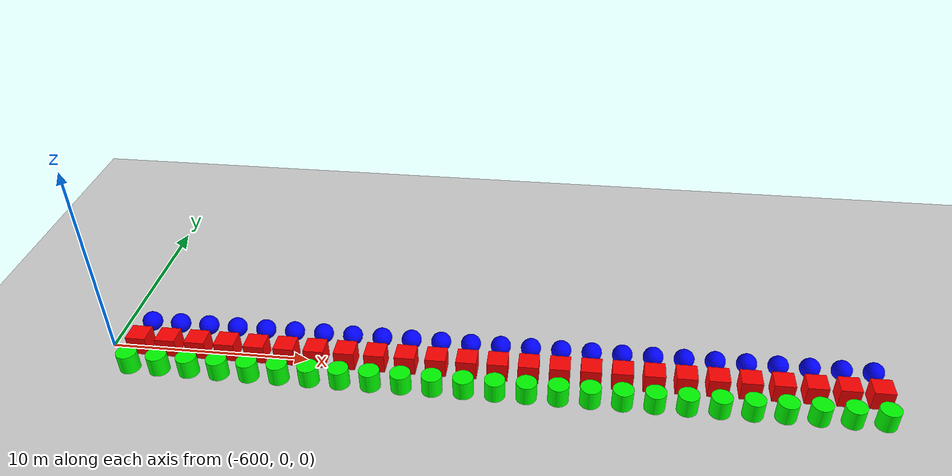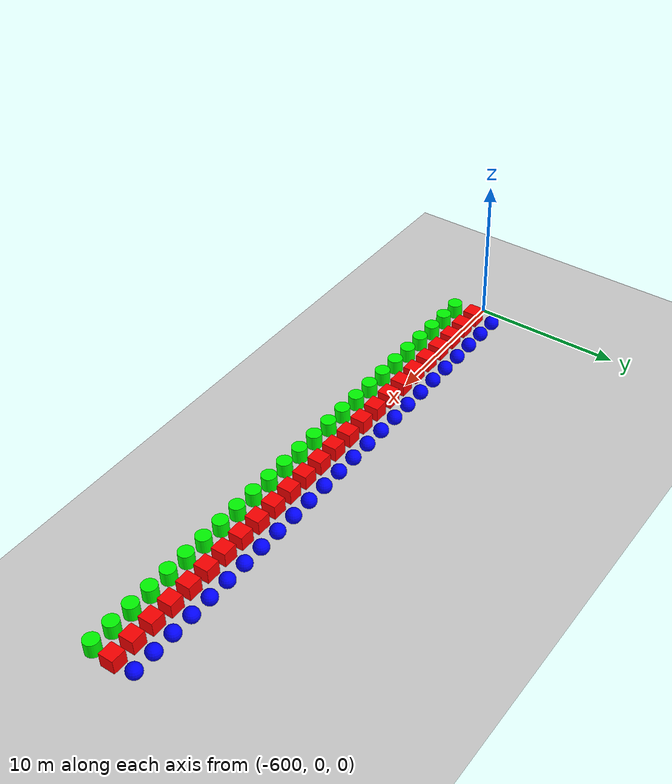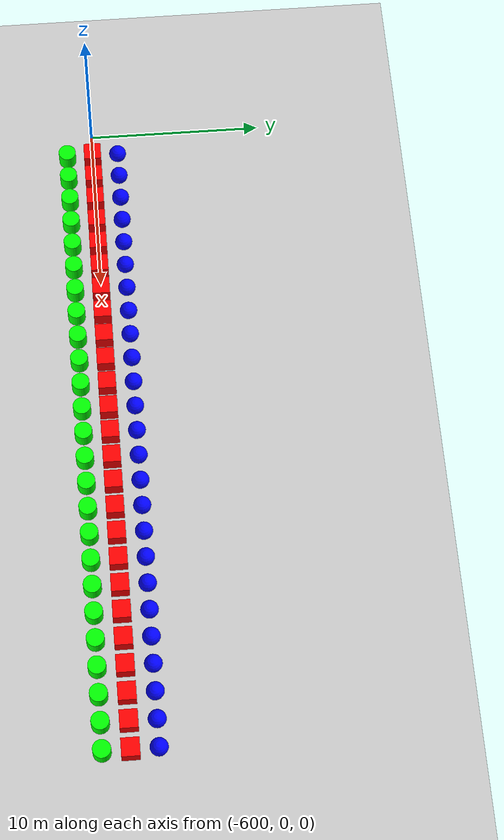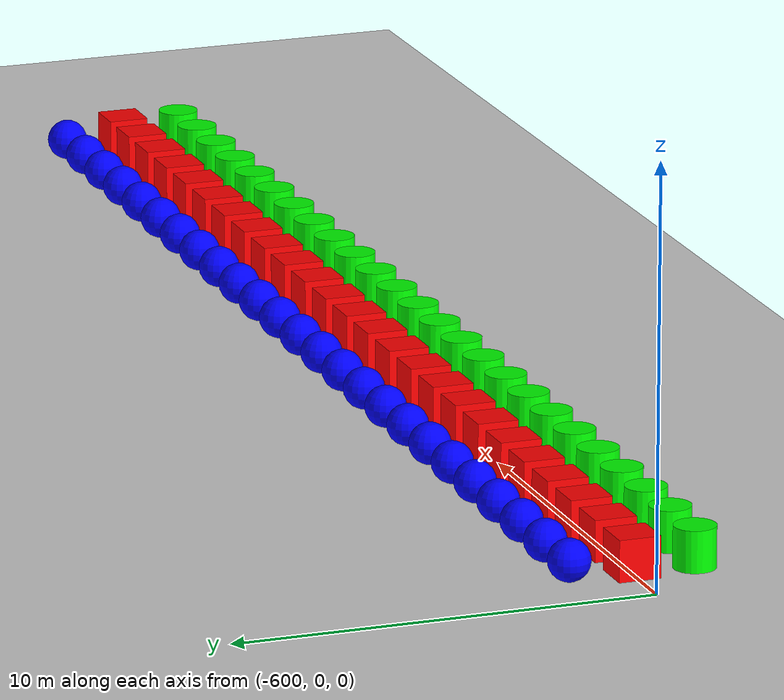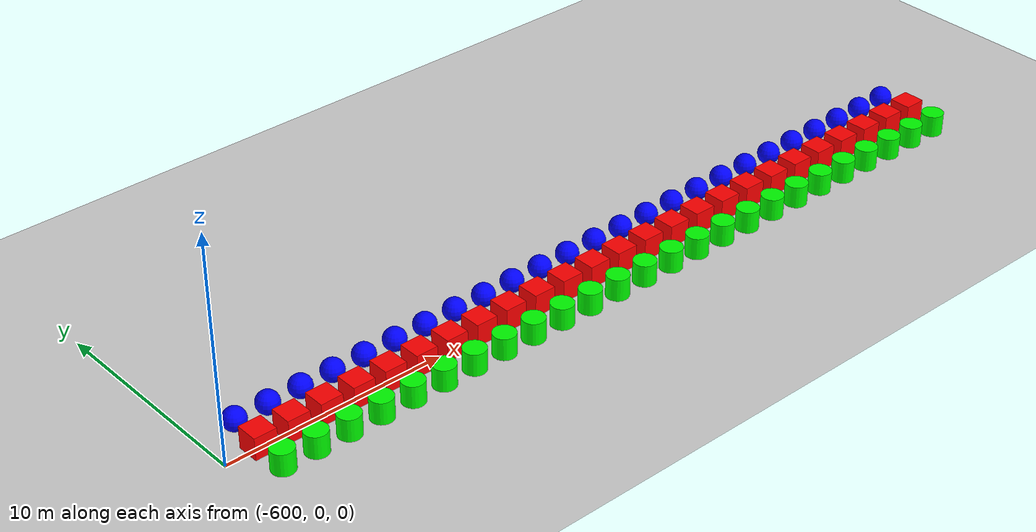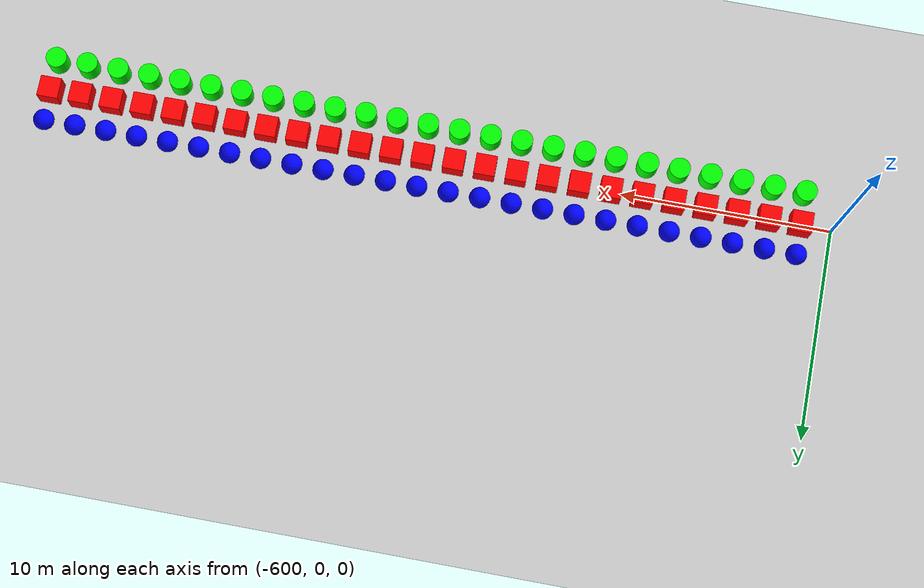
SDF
<sdf version="1.6">
 <world name="shapes">
  <model name="ground_plane">
   <static>true</static>
   <link name="link">
    <collision name="collision">
     <geometry><plane><normal>0 0 1</normal><size>100 100</size></plane></geometry>
    </collision>
    <visual name="visual">
     <geometry><plane><normal>0 0 1</normal><size>100 100</size></plane></geometry>
     <material>
      <ambient>0.8 0.8 0.8 1</ambient>
      <diffuse>0.8 0.8 0.8 1</diffuse>
      <specular>0.8 0.8 0.8 1</specular>
     </material>
    </visual>
   </link>
  </model>
  <model name="box_101">
   <pose>-598.5 0 0.5 0 0 0</pose>
   <link name="box_link">
    <inertial>
     <inertia><ixx>1</ixx><ixy>0</ixy><ixz>0</ixz><iyy>1</iyy><iyz>0</iyz><izz>1</izz></inertia>
     <mass>1.0</mass>
    </inertial>
    <collision name="box_collision"><geometry><box><size>1 1 1</size></box></geometry></collision>
    <visual name="box_visual">
     <geometry><box><size>1 1 1</size></box></geometry>
     <material><ambient>1 0 0 1</ambient><diffuse>1 0 0 1</diffuse><specular>1 0 0 1</specular></material>
    </visual>
   </link>
  </model>
  <model name="cylinder_101">
   <pose>-598.5 -1.5 0.5 0 0 0</pose>
   <link name="cylinder_link">
    <inertial>
     <inertia><ixx>2</ixx><ixy>0</ixy><ixz>0</ixz><iyy>2</iyy><iyz>0</iyz><izz>2</izz></inertia>
     <mass>2.0</mass>
    </inertial>
    <collision name="cylinder_collision">
     <geometry><cylinder><radius>0.5</radius><length>1.0</length></cylinder></geometry>
    </collision>
    <visual name="cylinder_visual">
     <geometry><cylinder><radius>0.5</radius><length>1.0</length></cylinder></geometry>
     <material><ambient>0 1 0 1</ambient><diffuse>0 1 0 1</diffuse><specular>0 1 0 1</specular></material>
    </visual>
   </link>
  </model>
  <model name="sphere_101">
   <pose>-598.5 1.5 0.5 0 0 0</pose>
   <link name="sphere_link">
    <inertial>
     <inertia><ixx>3</ixx><ixy>0</ixy><ixz>0</ixz><iyy>3</iyy><iyz>0</iyz><izz>3</izz></inertia>
     <mass>3.0</mass>
    </inertial>
    <collision name="sphere_collision"><geometry><sphere><radius>0.5</radius></sphere></geometry></collision>
    <visual name="sphere_visual">
     <geometry><sphere><radius>0.5</radius></sphere></geometry>
     <material><ambient>0 0 1 1</ambient><diffuse>0 0 1 1</diffuse><specular>0 0 1 1</specular></material>
    </visual>
   </link>
  </model>
  <model name="box_102">
   <pose>-597.0 0 0.5 0 0 0</pose>
   <link name="box_link">
    <inertial>
     <inertia><ixx>1</ixx><ixy>0</ixy><ixz>0</ixz><iyy>1</iyy><iyz>0</iyz><izz>1</izz></inertia>
     <mass>1.0</mass>
    </inertial>
    <collision name="box_collision"><geometry><box><size>1 1 1</size></box></geometry></collision>
    <visual name="box_visual">
     <geometry><box><size>1 1 1</size></box></geometry>
     <material><ambient>1 0 0 1</ambient><diffuse>1 0 0 1</diffuse><specular>1 0 0 1</specular></material>
    </visual>
   </link>
  </model>
  <model name="cylinder_102">
   <pose>-597.0 -1.5 0.5 0 0 0</pose>
   <link name="cylinder_link">
    <inertial>
     <inertia><ixx>2</ixx><ixy>0</ixy><ixz>0</ixz><iyy>2</iyy><iyz>0</iyz><izz>2</izz></inertia>
     <mass>2.0</mass>
    </inertial>
    <collision name="cylinder_collision">
     <geometry><cylinder><radius>0.5</radius><length>1.0</length></cylinder></geometry>
    </collision>
    <visual name="cylinder_visual">
     <geometry><cylinder><radius>0.5</radius><length>1.0</length></cylinder></geometry>
     <material><ambient>0 1 0 1</ambient><diffuse>0 1 0 1</diffuse><specular>0 1 0 1</specular></material>
    </visual>
   </link>
  </model>
  <model name="sphere_102">
   <pose>-597.0 1.5 0.5 0 0 0</pose>
   <link name="sphere_link">
    <inertial>
     <inertia><ixx>3</ixx><ixy>0</ixy><ixz>0</ixz><iyy>3</iyy><iyz>0</iyz><izz>3</izz></inertia>
     <mass>3.0</mass>
    </inertial>
    <collision name="sphere_collision"><geometry><sphere><radius>0.5</radius></sphere></geometry></collision>
    <visual name="sphere_visual">
     <geometry><sphere><radius>0.5</radius></sphere></geometry>
     <material><ambient>0 0 1 1</ambient><diffuse>0 0 1 1</diffuse><specular>0 0 1 1</specular></material>
    </visual>
   </link>
  </model>
  <model name="box_103">
   <pose>-595.5 0 0.5 0 0 0</pose>
   <link name="box_link">
    <inertial>
     <inertia><ixx>1</ixx><ixy>0</ixy><ixz>0</ixz><iyy>1</iyy><iyz>0</iyz><izz>1</izz></inertia>
     <mass>1.0</mass>
    </inertial>
    <collision name="box_collision"><geometry><box><size>1 1 1</size></box></geometry></collision>
    <visual name="box_visual">
     <geometry><box><size>1 1 1</size></box></geometry>
     <material><ambient>1 0 0 1</ambient><diffuse>1 0 0 1</diffuse><specular>1 0 0 1</specular></material>
    </visual>
   </link>
  </model>
  <model name="cylinder_103">
   <pose>-595.5 -1.5 0.5 0 0 0</pose>
   <link name="cylinder_link">
    <inertial>
     <inertia><ixx>2</ixx><ixy>0</ixy><ixz>0</ixz><iyy>2</iyy><iyz>0</iyz><izz>2</izz></inertia>
     <mass>2.0</mass>
    </inertial>
    <collision name="cylinder_collision">
     <geometry><cylinder><radius>0.5</radius><length>1.0</length></cylinder></geometry>
    </collision>
    <visual name="cylinder_visual">
     <geometry><cylinder><radius>0.5</radius><length>1.0</length></cylinder></geometry>
     <material><ambient>0 1 0 1</ambient><diffuse>0 1 0 1</diffuse><specular>0 1 0 1</specular></material>
    </visual>
   </link>
  </model>
  <model name="sphere_103">
   <pose>-595.5 1.5 0.5 0 0 0</pose>
   <link name="sphere_link">
    <inertial>
     <inertia><ixx>3</ixx><ixy>0</ixy><ixz>0</ixz><iyy>3</iyy><iyz>0</iyz><izz>3</izz></inertia>
     <mass>3.0</mass>
    </inertial>
    <collision name="sphere_collision"><geometry><sphere><radius>0.5</radius></sphere></geometry></collision>
    <visual name="sphere_visual">
     <geometry><sphere><radius>0.5</radius></sphere></geometry>
     <material><ambient>0 0 1 1</ambient><diffuse>0 0 1 1</diffuse><specular>0 0 1 1</specular></material>
    </visual>
   </link>
  </model>
  <model name="box_104">
   <pose>-594.0 0 0.5 0 0 0</pose>
   <link name="box_link">
    <inertial>
     <inertia><ixx>1</ixx><ixy>0</ixy><ixz>0</ixz><iyy>1</iyy><iyz>0</iyz><izz>1</izz></inertia>
     <mass>1.0</mass>
    </inertial>
    <collision name="box_collision"><geometry><box><size>1 1 1</size></box></geometry></collision>
    <visual name="box_visual">
     <geometry><box><size>1 1 1</size></box></geometry>
     <material><ambient>1 0 0 1</ambient><diffuse>1 0 0 1</diffuse><specular>1 0 0 1</specular></material>
    </visual>
   </link>
  </model>
  <model name="cylinder_104">
   <pose>-594.0 -1.5 0.5 0 0 0</pose>
   <link name="cylinder_link">
    <inertial>
     <inertia><ixx>2</ixx><ixy>0</ixy><ixz>0</ixz><iyy>2</iyy><iyz>0</iyz><izz>2</izz></inertia>
     <mass>2.0</mass>
    </inertial>
    <collision name="cylinder_collision">
     <geometry><cylinder><radius>0.5</radius><length>1.0</length></cylinder></geometry>
    </collision>
    <visual name="cylinder_visual">
     <geometry><cylinder><radius>0.5</radius><length>1.0</length></cylinder></geometry>
     <material><ambient>0 1 0 1</ambient><diffuse>0 1 0 1</diffuse><specular>0 1 0 1</specular></material>
    </visual>
   </link>
  </model>
  <model name="sphere_104">
   <pose>-594.0 1.5 0.5 0 0 0</pose>
   <link name="sphere_link">
    <inertial>
     <inertia><ixx>3</ixx><ixy>0</ixy><ixz>0</ixz><iyy>3</iyy><iyz>0</iyz><izz>3</izz></inertia>
     <mass>3.0</mass>
    </inertial>
    <collision name="sphere_collision"><geometry><sphere><radius>0.5</radius></sphere></geometry></collision>
    <visual name="sphere_visual">
     <geometry><sphere><radius>0.5</radius></sphere></geometry>
     <material><ambient>0 0 1 1</ambient><diffuse>0 0 1 1</diffuse><specular>0 0 1 1</specular></material>
    </visual>
   </link>
  </model>
  <model name="box_105">
   <pose>-592.5 0 0.5 0 0 0</pose>
   <link name="box_link">
    <inertial>
     <inertia><ixx>1</ixx><ixy>0</ixy><ixz>0</ixz><iyy>1</iyy><iyz>0</iyz><izz>1</izz></inertia>
     <mass>1.0</mass>
    </inertial>
    <collision name="box_collision"><geometry><box><size>1 1 1</size></box></geometry></collision>
    <visual name="box_visual">
     <geometry><box><size>1 1 1</size></box></geometry>
     <material><ambient>1 0 0 1</ambient><diffuse>1 0 0 1</diffuse><specular>1 0 0 1</specular></material>
    </visual>
   </link>
  </model>
  <model name="cylinder_105">
   <pose>-592.5 -1.5 0.5 0 0 0</pose>
   <link name="cylinder_link">
    <inertial>
     <inertia><ixx>2</ixx><ixy>0</ixy><ixz>0</ixz><iyy>2</iyy><iyz>0</iyz><izz>2</izz></inertia>
     <mass>2.0</mass>
    </inertial>
    <collision name="cylinder_collision">
     <geometry><cylinder><radius>0.5</radius><length>1.0</length></cylinder></geometry>
    </collision>
    <visual name="cylinder_visual">
     <geometry><cylinder><radius>0.5</radius><length>1.0</length></cylinder></geometry>
     <material><ambient>0 1 0 1</ambient><diffuse>0 1 0 1</diffuse><specular>0 1 0 1</specular></material>
    </visual>
   </link>
  </model>
  <model name="sphere_105">
   <pose>-592.5 1.5 0.5 0 0 0</pose>
   <link name="sphere_link">
    <inertial>
     <inertia><ixx>3</ixx><ixy>0</ixy><ixz>0</ixz><iyy>3</iyy><iyz>0</iyz><izz>3</izz></inertia>
     <mass>3.0</mass>
    </inertial>
    <collision name="sphere_collision"><geometry><sphere><radius>0.5</radius></sphere></geometry></collision>
    <visual name="sphere_visual">
     <geometry><sphere><radius>0.5</radius></sphere></geometry>
     <material><ambient>0 0 1 1</ambient><diffuse>0 0 1 1</diffuse><specular>0 0 1 1</specular></material>
    </visual>
   </link>
  </model>
  <model name="box_106">
   <pose>-591.0 0 0.5 0 0 0</pose>
   <link name="box_link">
    <inertial>
     <inertia><ixx>1</ixx><ixy>0</ixy><ixz>0</ixz><iyy>1</iyy><iyz>0</iyz><izz>1</izz></inertia>
     <mass>1.0</mass>
    </inertial>
    <collision name="box_collision"><geometry><box><size>1 1 1</size></box></geometry></collision>
    <visual name="box_visual">
     <geometry><box><size>1 1 1</size></box></geometry>
     <material><ambient>1 0 0 1</ambient><diffuse>1 0 0 1</diffuse><specular>1 0 0 1</specular></material>
    </visual>
   </link>
  </model>
  <model name="cylinder_106">
   <pose>-591.0 -1.5 0.5 0 0 0</pose>
   <link name="cylinder_link">
    <inertial>
     <inertia><ixx>2</ixx><ixy>0</ixy><ixz>0</ixz><iyy>2</iyy><iyz>0</iyz><izz>2</izz></inertia>
     <mass>2.0</mass>
    </inertial>
    <collision name="cylinder_collision">
     <geometry><cylinder><radius>0.5</radius><length>1.0</length></cylinder></geometry>
    </collision>
    <visual name="cylinder_visual">
     <geometry><cylinder><radius>0.5</radius><length>1.0</length></cylinder></geometry>
     <material><ambient>0 1 0 1</ambient><diffuse>0 1 0 1</diffuse><specular>0 1 0 1</specular></material>
    </visual>
   </link>
  </model>
  <model name="sphere_106">
   <pose>-591.0 1.5 0.5 0 0 0</pose>
   <link name="sphere_link">
    <inertial>
     <inertia><ixx>3</ixx><ixy>0</ixy><ixz>0</ixz><iyy>3</iyy><iyz>0</iyz><izz>3</izz></inertia>
     <mass>3.0</mass>
    </inertial>
    <collision name="sphere_collision"><geometry><sphere><radius>0.5</radius></sphere></geometry></collision>
    <visual name="sphere_visual">
     <geometry><sphere><radius>0.5</radius></sphere></geometry>
     <material><ambient>0 0 1 1</ambient><diffuse>0 0 1 1</diffuse><specular>0 0 1 1</specular></material>
    </visual>
   </link>
  </model>
  <model name="box_107">
   <pose>-589.5 0 0.5 0 0 0</pose>
   <link name="box_link">
    <inertial>
     <inertia><ixx>1</ixx><ixy>0</ixy><ixz>0</ixz><iyy>1</iyy><iyz>0</iyz><izz>1</izz></inertia>
     <mass>1.0</mass>
    </inertial>
    <collision name="box_collision"><geometry><box><size>1 1 1</size></box></geometry></collision>
    <visual name="box_visual">
     <geometry><box><size>1 1 1</size></box></geometry>
     <material><ambient>1 0 0 1</ambient><diffuse>1 0 0 1</diffuse><specular>1 0 0 1</specular></material>
    </visual>
   </link>
  </model>
  <model name="cylinder_107">
   <pose>-589.5 -1.5 0.5 0 0 0</pose>
   <link name="cylinder_link">
    <inertial>
     <inertia><ixx>2</ixx><ixy>0</ixy><ixz>0</ixz><iyy>2</iyy><iyz>0</iyz><izz>2</izz></inertia>
     <mass>2.0</mass>
    </inertial>
    <collision name="cylinder_collision">
     <geometry><cylinder><radius>0.5</radius><length>1.0</length></cylinder></geometry>
    </collision>
    <visual name="cylinder_visual">
     <geometry><cylinder><radius>0.5</radius><length>1.0</length></cylinder></geometry>
     <material><ambient>0 1 0 1</ambient><diffuse>0 1 0 1</diffuse><specular>0 1 0 1</specular></material>
    </visual>
   </link>
  </model>
  <model name="sphere_107">
   <pose>-589.5 1.5 0.5 0 0 0</pose>
   <link name="sphere_link">
    <inertial>
     <inertia><ixx>3</ixx><ixy>0</ixy><ixz>0</ixz><iyy>3</iyy><iyz>0</iyz><izz>3</izz></inertia>
     <mass>3.0</mass>
    </inertial>
    <collision name="sphere_collision"><geometry><sphere><radius>0.5</radius></sphere></geometry></collision>
    <visual name="sphere_visual">
     <geometry><sphere><radius>0.5</radius></sphere></geometry>
     <material><ambient>0 0 1 1</ambient><diffuse>0 0 1 1</diffuse><specular>0 0 1 1</specular></material>
    </visual>
   </link>
  </model>
  <model name="box_108">
   <pose>-588.0 0 0.5 0 0 0</pose>
   <link name="box_link">
    <inertial>
     <inertia><ixx>1</ixx><ixy>0</ixy><ixz>0</ixz><iyy>1</iyy><iyz>0</iyz><izz>1</izz></inertia>
     <mass>1.0</mass>
    </inertial>
    <collision name="box_collision"><geometry><box><size>1 1 1</size></box></geometry></collision>
    <visual name="box_visual">
     <geometry><box><size>1 1 1</size></box></geometry>
     <material><ambient>1 0 0 1</ambient><diffuse>1 0 0 1</diffuse><specular>1 0 0 1</specular></material>
    </visual>
   </link>
  </model>
  <model name="cylinder_108">
   <pose>-588.0 -1.5 0.5 0 0 0</pose>
   <link name="cylinder_link">
    <inertial>
     <inertia><ixx>2</ixx><ixy>0</ixy><ixz>0</ixz><iyy>2</iyy><iyz>0</iyz><izz>2</izz></inertia>
     <mass>2.0</mass>
    </inertial>
    <collision name="cylinder_collision">
     <geometry><cylinder><radius>0.5</radius><length>1.0</length></cylinder></geometry>
    </collision>
    <visual name="cylinder_visual">
     <geometry><cylinder><radius>0.5</radius><length>1.0</length></cylinder></geometry>
     <material><ambient>0 1 0 1</ambient><diffuse>0 1 0 1</diffuse><specular>0 1 0 1</specular></material>
    </visual>
   </link>
  </model>
  <model name="sphere_108">
   <pose>-588.0 1.5 0.5 0 0 0</pose>
   <link name="sphere_link">
    <inertial>
     <inertia><ixx>3</ixx><ixy>0</ixy><ixz>0</ixz><iyy>3</iyy><iyz>0</iyz><izz>3</izz></inertia>
     <mass>3.0</mass>
    </inertial>
    <collision name="sphere_collision"><geometry><sphere><radius>0.5</radius></sphere></geometry></collision>
    <visual name="sphere_visual">
     <geometry><sphere><radius>0.5</radius></sphere></geometry>
     <material><ambient>0 0 1 1</ambient><diffuse>0 0 1 1</diffuse><specular>0 0 1 1</specular></material>
    </visual>
   </link>
  </model>
  <model name="box_109">
   <pose>-586.5 0 0.5 0 0 0</pose>
   <link name="box_link">
    <inertial>
     <inertia><ixx>1</ixx><ixy>0</ixy><ixz>0</ixz><iyy>1</iyy><iyz>0</iyz><izz>1</izz></inertia>
     <mass>1.0</mass>
    </inertial>
    <collision name="box_collision"><geometry><box><size>1 1 1</size></box></geometry></collision>
    <visual name="box_visual">
     <geometry><box><size>1 1 1</size></box></geometry>
     <material><ambient>1 0 0 1</ambient><diffuse>1 0 0 1</diffuse><specular>1 0 0 1</specular></material>
    </visual>
   </link>
  </model>
  <model name="cylinder_109">
   <pose>-586.5 -1.5 0.5 0 0 0</pose>
   <link name="cylinder_link">
    <inertial>
     <inertia><ixx>2</ixx><ixy>0</ixy><ixz>0</ixz><iyy>2</iyy><iyz>0</iyz><izz>2</izz></inertia>
     <mass>2.0</mass>
    </inertial>
    <collision name="cylinder_collision">
     <geometry><cylinder><radius>0.5</radius><length>1.0</length></cylinder></geometry>
    </collision>
    <visual name="cylinder_visual">
     <geometry><cylinder><radius>0.5</radius><length>1.0</length></cylinder></geometry>
     <material><ambient>0 1 0 1</ambient><diffuse>0 1 0 1</diffuse><specular>0 1 0 1</specular></material>
    </visual>
   </link>
  </model>
  <model name="sphere_109">
   <pose>-586.5 1.5 0.5 0 0 0</pose>
   <link name="sphere_link">
    <inertial>
     <inertia><ixx>3</ixx><ixy>0</ixy><ixz>0</ixz><iyy>3</iyy><iyz>0</iyz><izz>3</izz></inertia>
     <mass>3.0</mass>
    </inertial>
    <collision name="sphere_collision"><geometry><sphere><radius>0.5</radius></sphere></geometry></collision>
    <visual name="sphere_visual">
     <geometry><sphere><radius>0.5</radius></sphere></geometry>
     <material><ambient>0 0 1 1</ambient><diffuse>0 0 1 1</diffuse><specular>0 0 1 1</specular></material>
    </visual>
   </link>
  </model>
  <model name="box_110">
   <pose>-585.0 0 0.5 0 0 0</pose>
   <link name="box_link">
    <inertial>
     <inertia><ixx>1</ixx><ixy>0</ixy><ixz>0</ixz><iyy>1</iyy><iyz>0</iyz><izz>1</izz></inertia>
     <mass>1.0</mass>
    </inertial>
    <collision name="box_collision"><geometry><box><size>1 1 1</size></box></geometry></collision>
    <visual name="box_visual">
     <geometry><box><size>1 1 1</size></box></geometry>
     <material><ambient>1 0 0 1</ambient><diffuse>1 0 0 1</diffuse><specular>1 0 0 1</specular></material>
    </visual>
   </link>
  </model>
  <model name="cylinder_110">
   <pose>-585.0 -1.5 0.5 0 0 0</pose>
   <link name="cylinder_link">
    <inertial>
     <inertia><ixx>2</ixx><ixy>0</ixy><ixz>0</ixz><iyy>2</iyy><iyz>0</iyz><izz>2</izz></inertia>
     <mass>2.0</mass>
    </inertial>
    <collision name="cylinder_collision">
     <geometry><cylinder><radius>0.5</radius><length>1.0</length></cylinder></geometry>
    </collision>
    <visual name="cylinder_visual">
     <geometry><cylinder><radius>0.5</radius><length>1.0</length></cylinder></geometry>
     <material><ambient>0 1 0 1</ambient><diffuse>0 1 0 1</diffuse><specular>0 1 0 1</specular></material>
    </visual>
   </link>
  </model>
  <model name="sphere_110">
   <pose>-585.0 1.5 0.5 0 0 0</pose>
   <link name="sphere_link">
    <inertial>
     <inertia><ixx>3</ixx><ixy>0</ixy><ixz>0</ixz><iyy>3</iyy><iyz>0</iyz><izz>3</izz></inertia>
     <mass>3.0</mass>
    </inertial>
    <collision name="sphere_collision"><geometry><sphere><radius>0.5</radius></sphere></geometry></collision>
    <visual name="sphere_visual">
     <geometry><sphere><radius>0.5</radius></sphere></geometry>
     <material><ambient>0 0 1 1</ambient><diffuse>0 0 1 1</diffuse><specular>0 0 1 1</specular></material>
    </visual>
   </link>
  </model>
  <model name="box_111">
   <pose>-583.5 0 0.5 0 0 0</pose>
   <link name="box_link">
    <inertial>
     <inertia><ixx>1</ixx><ixy>0</ixy><ixz>0</ixz><iyy>1</iyy><iyz>0</iyz><izz>1</izz></inertia>
     <mass>1.0</mass>
    </inertial>
    <collision name="box_collision"><geometry><box><size>1 1 1</size></box></geometry></collision>
    <visual name="box_visual">
     <geometry><box><size>1 1 1</size></box></geometry>
     <material><ambient>1 0 0 1</ambient><diffuse>1 0 0 1</diffuse><specular>1 0 0 1</specular></material>
    </visual>
   </link>
  </model>
  <model name="cylinder_111">
   <pose>-583.5 -1.5 0.5 0 0 0</pose>
   <link name="cylinder_link">
    <inertial>
     <inertia><ixx>2</ixx><ixy>0</ixy><ixz>0</ixz><iyy>2</iyy><iyz>0</iyz><izz>2</izz></inertia>
     <mass>2.0</mass>
    </inertial>
    <collision name="cylinder_collision">
     <geometry><cylinder><radius>0.5</radius><length>1.0</length></cylinder></geometry>
    </collision>
    <visual name="cylinder_visual">
     <geometry><cylinder><radius>0.5</radius><length>1.0</length></cylinder></geometry>
     <material><ambient>0 1 0 1</ambient><diffuse>0 1 0 1</diffuse><specular>0 1 0 1</specular></material>
    </visual>
   </link>
  </model>
  <model name="sphere_111">
   <pose>-583.5 1.5 0.5 0 0 0</pose>
   <link name="sphere_link">
    <inertial>
     <inertia><ixx>3</ixx><ixy>0</ixy><ixz>0</ixz><iyy>3</iyy><iyz>0</iyz><izz>3</izz></inertia>
     <mass>3.0</mass>
    </inertial>
    <collision name="sphere_collision"><geometry><sphere><radius>0.5</radius></sphere></geometry></collision>
    <visual name="sphere_visual">
     <geometry><sphere><radius>0.5</radius></sphere></geometry>
     <material><ambient>0 0 1 1</ambient><diffuse>0 0 1 1</diffuse><specular>0 0 1 1</specular></material>
    </visual>
   </link>
  </model>
  <model name="box_112">
   <pose>-582.0 0 0.5 0 0 0</pose>
   <link name="box_link">
    <inertial>
     <inertia><ixx>1</ixx><ixy>0</ixy><ixz>0</ixz><iyy>1</iyy><iyz>0</iyz><izz>1</izz></inertia>
     <mass>1.0</mass>
    </inertial>
    <collision name="box_collision"><geometry><box><size>1 1 1</size></box></geometry></collision>
    <visual name="box_visual">
     <geometry><box><size>1 1 1</size></box></geometry>
     <material><ambient>1 0 0 1</ambient><diffuse>1 0 0 1</diffuse><specular>1 0 0 1</specular></material>
    </visual>
   </link>
  </model>
  <model name="cylinder_112">
   <pose>-582.0 -1.5 0.5 0 0 0</pose>
   <link name="cylinder_link">
    <inertial>
     <inertia><ixx>2</ixx><ixy>0</ixy><ixz>0</ixz><iyy>2</iyy><iyz>0</iyz><izz>2</izz></inertia>
     <mass>2.0</mass>
    </inertial>
    <collision name="cylinder_collision">
     <geometry><cylinder><radius>0.5</radius><length>1.0</length></cylinder></geometry>
    </collision>
    <visual name="cylinder_visual">
     <geometry><cylinder><radius>0.5</radius><length>1.0</length></cylinder></geometry>
     <material><ambient>0 1 0 1</ambient><diffuse>0 1 0 1</diffuse><specular>0 1 0 1</specular></material>
    </visual>
   </link>
  </model>
  <model name="sphere_112">
   <pose>-582.0 1.5 0.5 0 0 0</pose>
   <link name="sphere_link">
    <inertial>
     <inertia><ixx>3</ixx><ixy>0</ixy><ixz>0</ixz><iyy>3</iyy><iyz>0</iyz><izz>3</izz></inertia>
     <mass>3.0</mass>
    </inertial>
    <collision name="sphere_collision"><geometry><sphere><radius>0.5</radius></sphere></geometry></collision>
    <visual name="sphere_visual">
     <geometry><sphere><radius>0.5</radius></sphere></geometry>
     <material><ambient>0 0 1 1</ambient><diffuse>0 0 1 1</diffuse><specular>0 0 1 1</specular></material>
    </visual>
   </link>
  </model>
  <model name="box_113">
   <pose>-580.5 0 0.5 0 0 0</pose>
   <link name="box_link">
    <inertial>
     <inertia><ixx>1</ixx><ixy>0</ixy><ixz>0</ixz><iyy>1</iyy><iyz>0</iyz><izz>1</izz></inertia>
     <mass>1.0</mass>
    </inertial>
    <collision name="box_collision"><geometry><box><size>1 1 1</size></box></geometry></collision>
    <visual name="box_visual">
     <geometry><box><size>1 1 1</size></box></geometry>
     <material><ambient>1 0 0 1</ambient><diffuse>1 0 0 1</diffuse><specular>1 0 0 1</specular></material>
    </visual>
   </link>
  </model>
  <model name="cylinder_113">
   <pose>-580.5 -1.5 0.5 0 0 0</pose>
   <link name="cylinder_link">
    <inertial>
     <inertia><ixx>2</ixx><ixy>0</ixy><ixz>0</ixz><iyy>2</iyy><iyz>0</iyz><izz>2</izz></inertia>
     <mass>2.0</mass>
    </inertial>
    <collision name="cylinder_collision">
     <geometry><cylinder><radius>0.5</radius><length>1.0</length></cylinder></geometry>
    </collision>
    <visual name="cylinder_visual">
     <geometry><cylinder><radius>0.5</radius><length>1.0</length></cylinder></geometry>
     <material><ambient>0 1 0 1</ambient><diffuse>0 1 0 1</diffuse><specular>0 1 0 1</specular></material>
    </visual>
   </link>
  </model>
  <model name="sphere_113">
   <pose>-580.5 1.5 0.5 0 0 0</pose>
   <link name="sphere_link">
    <inertial>
     <inertia><ixx>3</ixx><ixy>0</ixy><ixz>0</ixz><iyy>3</iyy><iyz>0</iyz><izz>3</izz></inertia>
     <mass>3.0</mass>
    </inertial>
    <collision name="sphere_collision"><geometry><sphere><radius>0.5</radius></sphere></geometry></collision>
    <visual name="sphere_visual">
     <geometry><sphere><radius>0.5</radius></sphere></geometry>
     <material><ambient>0 0 1 1</ambient><diffuse>0 0 1 1</diffuse><specular>0 0 1 1</specular></material>
    </visual>
   </link>
  </model>
  <model name="box_114">
   <pose>-579.0 0 0.5 0 0 0</pose>
   <link name="box_link">
    <inertial>
     <inertia><ixx>1</ixx><ixy>0</ixy><ixz>0</ixz><iyy>1</iyy><iyz>0</iyz><izz>1</izz></inertia>
     <mass>1.0</mass>
    </inertial>
    <collision name="box_collision"><geometry><box><size>1 1 1</size></box></geometry></collision>
    <visual name="box_visual">
     <geometry><box><size>1 1 1</size></box></geometry>
     <material><ambient>1 0 0 1</ambient><diffuse>1 0 0 1</diffuse><specular>1 0 0 1</specular></material>
    </visual>
   </link>
  </model>
  <model name="cylinder_114">
   <pose>-579.0 -1.5 0.5 0 0 0</pose>
   <link name="cylinder_link">
    <inertial>
     <inertia><ixx>2</ixx><ixy>0</ixy><ixz>0</ixz><iyy>2</iyy><iyz>0</iyz><izz>2</izz></inertia>
     <mass>2.0</mass>
    </inertial>
    <collision name="cylinder_collision">
     <geometry><cylinder><radius>0.5</radius><length>1.0</length></cylinder></geometry>
    </collision>
    <visual name="cylinder_visual">
     <geometry><cylinder><radius>0.5</radius><length>1.0</length></cylinder></geometry>
     <material><ambient>0 1 0 1</ambient><diffuse>0 1 0 1</diffuse><specular>0 1 0 1</specular></material>
    </visual>
   </link>
  </model>
  <model name="sphere_114">
   <pose>-579.0 1.5 0.5 0 0 0</pose>
   <link name="sphere_link">
    <inertial>
     <inertia><ixx>3</ixx><ixy>0</ixy><ixz>0</ixz><iyy>3</iyy><iyz>0</iyz><izz>3</izz></inertia>
     <mass>3.0</mass>
    </inertial>
    <collision name="sphere_collision"><geometry><sphere><radius>0.5</radius></sphere></geometry></collision>
    <visual name="sphere_visual">
     <geometry><sphere><radius>0.5</radius></sphere></geometry>
     <material><ambient>0 0 1 1</ambient><diffuse>0 0 1 1</diffuse><specular>0 0 1 1</specular></material>
    </visual>
   </link>
  </model>
  <model name="box_115">
   <pose>-577.5 0 0.5 0 0 0</pose>
   <link name="box_link">
    <inertial>
     <inertia><ixx>1</ixx><ixy>0</ixy><ixz>0</ixz><iyy>1</iyy><iyz>0</iyz><izz>1</izz></inertia>
     <mass>1.0</mass>
    </inertial>
    <collision name="box_collision"><geometry><box><size>1 1 1</size></box></geometry></collision>
    <visual name="box_visual">
     <geometry><box><size>1 1 1</size></box></geometry>
     <material><ambient>1 0 0 1</ambient><diffuse>1 0 0 1</diffuse><specular>1 0 0 1</specular></material>
    </visual>
   </link>
  </model>
  <model name="cylinder_115">
   <pose>-577.5 -1.5 0.5 0 0 0</pose>
   <link name="cylinder_link">
    <inertial>
     <inertia><ixx>2</ixx><ixy>0</ixy><ixz>0</ixz><iyy>2</iyy><iyz>0</iyz><izz>2</izz></inertia>
     <mass>2.0</mass>
    </inertial>
    <collision name="cylinder_collision">
     <geometry><cylinder><radius>0.5</radius><length>1.0</length></cylinder></geometry>
    </collision>
    <visual name="cylinder_visual">
     <geometry><cylinder><radius>0.5</radius><length>1.0</length></cylinder></geometry>
     <material><ambient>0 1 0 1</ambient><diffuse>0 1 0 1</diffuse><specular>0 1 0 1</specular></material>
    </visual>
   </link>
  </model>
  <model name="sphere_115">
   <pose>-577.5 1.5 0.5 0 0 0</pose>
   <link name="sphere_link">
    <inertial>
     <inertia><ixx>3</ixx><ixy>0</ixy><ixz>0</ixz><iyy>3</iyy><iyz>0</iyz><izz>3</izz></inertia>
     <mass>3.0</mass>
    </inertial>
    <collision name="sphere_collision"><geometry><sphere><radius>0.5</radius></sphere></geometry></collision>
    <visual name="sphere_visual">
     <geometry><sphere><radius>0.5</radius></sphere></geometry>
     <material><ambient>0 0 1 1</ambient><diffuse>0 0 1 1</diffuse><specular>0 0 1 1</specular></material>
    </visual>
   </link>
  </model>
  <model name="box_116">
   <pose>-576.0 0 0.5 0 0 0</pose>
   <link name="box_link">
    <inertial>
     <inertia><ixx>1</ixx><ixy>0</ixy><ixz>0</ixz><iyy>1</iyy><iyz>0</iyz><izz>1</izz></inertia>
     <mass>1.0</mass>
    </inertial>
    <collision name="box_collision"><geometry><box><size>1 1 1</size></box></geometry></collision>
    <visual name="box_visual">
     <geometry><box><size>1 1 1</size></box></geometry>
     <material><ambient>1 0 0 1</ambient><diffuse>1 0 0 1</diffuse><specular>1 0 0 1</specular></material>
    </visual>
   </link>
  </model>
  <model name="cylinder_116">
   <pose>-576.0 -1.5 0.5 0 0 0</pose>
   <link name="cylinder_link">
    <inertial>
     <inertia><ixx>2</ixx><ixy>0</ixy><ixz>0</ixz><iyy>2</iyy><iyz>0</iyz><izz>2</izz></inertia>
     <mass>2.0</mass>
    </inertial>
    <collision name="cylinder_collision">
     <geometry><cylinder><radius>0.5</radius><length>1.0</length></cylinder></geometry>
    </collision>
    <visual name="cylinder_visual">
     <geometry><cylinder><radius>0.5</radius><length>1.0</length></cylinder></geometry>
     <material><ambient>0 1 0 1</ambient><diffuse>0 1 0 1</diffuse><specular>0 1 0 1</specular></material>
    </visual>
   </link>
  </model>
  <model name="sphere_116">
   <pose>-576.0 1.5 0.5 0 0 0</pose>
   <link name="sphere_link">
    <inertial>
     <inertia><ixx>3</ixx><ixy>0</ixy><ixz>0</ixz><iyy>3</iyy><iyz>0</iyz><izz>3</izz></inertia>
     <mass>3.0</mass>
    </inertial>
    <collision name="sphere_collision"><geometry><sphere><radius>0.5</radius></sphere></geometry></collision>
    <visual name="sphere_visual">
     <geometry><sphere><radius>0.5</radius></sphere></geometry>
     <material><ambient>0 0 1 1</ambient><diffuse>0 0 1 1</diffuse><specular>0 0 1 1</specular></material>
    </visual>
   </link>
  </model>
  <model name="box_117">
   <pose>-574.5 0 0.5 0 0 0</pose>
   <link name="box_link">
    <inertial>
     <inertia><ixx>1</ixx><ixy>0</ixy><ixz>0</ixz><iyy>1</iyy><iyz>0</iyz><izz>1</izz></inertia>
     <mass>1.0</mass>
    </inertial>
    <collision name="box_collision"><geometry><box><size>1 1 1</size></box></geometry></collision>
    <visual name="box_visual">
     <geometry><box><size>1 1 1</size></box></geometry>
     <material><ambient>1 0 0 1</ambient><diffuse>1 0 0 1</diffuse><specular>1 0 0 1</specular></material>
    </visual>
   </link>
  </model>
  <model name="cylinder_117">
   <pose>-574.5 -1.5 0.5 0 0 0</pose>
   <link name="cylinder_link">
    <inertial>
     <inertia><ixx>2</ixx><ixy>0</ixy><ixz>0</ixz><iyy>2</iyy><iyz>0</iyz><izz>2</izz></inertia>
     <mass>2.0</mass>
    </inertial>
    <collision name="cylinder_collision">
     <geometry><cylinder><radius>0.5</radius><length>1.0</length></cylinder></geometry>
    </collision>
    <visual name="cylinder_visual">
     <geometry><cylinder><radius>0.5</radius><length>1.0</length></cylinder></geometry>
     <material><ambient>0 1 0 1</ambient><diffuse>0 1 0 1</diffuse><specular>0 1 0 1</specular></material>
    </visual>
   </link>
  </model>
  <model name="sphere_117">
   <pose>-574.5 1.5 0.5 0 0 0</pose>
   <link name="sphere_link">
    <inertial>
     <inertia><ixx>3</ixx><ixy>0</ixy><ixz>0</ixz><iyy>3</iyy><iyz>0</iyz><izz>3</izz></inertia>
     <mass>3.0</mass>
    </inertial>
    <collision name="sphere_collision"><geometry><sphere><radius>0.5</radius></sphere></geometry></collision>
    <visual name="sphere_visual">
     <geometry><sphere><radius>0.5</radius></sphere></geometry>
     <material><ambient>0 0 1 1</ambient><diffuse>0 0 1 1</diffuse><specular>0 0 1 1</specular></material>
    </visual>
   </link>
  </model>
  <model name="box_118">
   <pose>-573.0 0 0.5 0 0 0</pose>
   <link name="box_link">
    <inertial>
     <inertia><ixx>1</ixx><ixy>0</ixy><ixz>0</ixz><iyy>1</iyy><iyz>0</iyz><izz>1</izz></inertia>
     <mass>1.0</mass>
    </inertial>
    <collision name="box_collision"><geometry><box><size>1 1 1</size></box></geometry></collision>
    <visual name="box_visual">
     <geometry><box><size>1 1 1</size></box></geometry>
     <material><ambient>1 0 0 1</ambient><diffuse>1 0 0 1</diffuse><specular>1 0 0 1</specular></material>
    </visual>
   </link>
  </model>
  <model name="cylinder_118">
   <pose>-573.0 -1.5 0.5 0 0 0</pose>
   <link name="cylinder_link">
    <inertial>
     <inertia><ixx>2</ixx><ixy>0</ixy><ixz>0</ixz><iyy>2</iyy><iyz>0</iyz><izz>2</izz></inertia>
     <mass>2.0</mass>
    </inertial>
    <collision name="cylinder_collision">
     <geometry><cylinder><radius>0.5</radius><length>1.0</length></cylinder></geometry>
    </collision>
    <visual name="cylinder_visual">
     <geometry><cylinder><radius>0.5</radius><length>1.0</length></cylinder></geometry>
     <material><ambient>0 1 0 1</ambient><diffuse>0 1 0 1</diffuse><specular>0 1 0 1</specular></material>
    </visual>
   </link>
  </model>
  <model name="sphere_118">
   <pose>-573.0 1.5 0.5 0 0 0</pose>
   <link name="sphere_link">
    <inertial>
     <inertia><ixx>3</ixx><ixy>0</ixy><ixz>0</ixz><iyy>3</iyy><iyz>0</iyz><izz>3</izz></inertia>
     <mass>3.0</mass>
    </inertial>
    <collision name="sphere_collision"><geometry><sphere><radius>0.5</radius></sphere></geometry></collision>
    <visual name="sphere_visual">
     <geometry><sphere><radius>0.5</radius></sphere></geometry>
     <material><ambient>0 0 1 1</ambient><diffuse>0 0 1 1</diffuse><specular>0 0 1 1</specular></material>
    </visual>
   </link>
  </model>
  <model name="box_119">
   <pose>-571.5 0 0.5 0 0 0</pose>
   <link name="box_link">
    <inertial>
     <inertia><ixx>1</ixx><ixy>0</ixy><ixz>0</ixz><iyy>1</iyy><iyz>0</iyz><izz>1</izz></inertia>
     <mass>1.0</mass>
    </inertial>
    <collision name="box_collision"><geometry><box><size>1 1 1</size></box></geometry></collision>
    <visual name="box_visual">
     <geometry><box><size>1 1 1</size></box></geometry>
     <material><ambient>1 0 0 1</ambient><diffuse>1 0 0 1</diffuse><specular>1 0 0 1</specular></material>
    </visual>
   </link>
  </model>
  <model name="cylinder_119">
   <pose>-571.5 -1.5 0.5 0 0 0</pose>
   <link name="cylinder_link">
    <inertial>
     <inertia><ixx>2</ixx><ixy>0</ixy><ixz>0</ixz><iyy>2</iyy><iyz>0</iyz><izz>2</izz></inertia>
     <mass>2.0</mass>
    </inertial>
    <collision name="cylinder_collision">
     <geometry><cylinder><radius>0.5</radius><length>1.0</length></cylinder></geometry>
    </collision>
    <visual name="cylinder_visual">
     <geometry><cylinder><radius>0.5</radius><length>1.0</length></cylinder></geometry>
     <material><ambient>0 1 0 1</ambient><diffuse>0 1 0 1</diffuse><specular>0 1 0 1</specular></material>
    </visual>
   </link>
  </model>
  <model name="sphere_119">
   <pose>-571.5 1.5 0.5 0 0 0</pose>
   <link name="sphere_link">
    <inertial>
     <inertia><ixx>3</ixx><ixy>0</ixy><ixz>0</ixz><iyy>3</iyy><iyz>0</iyz><izz>3</izz></inertia>
     <mass>3.0</mass>
    </inertial>
    <collision name="sphere_collision"><geometry><sphere><radius>0.5</radius></sphere></geometry></collision>
    <visual name="sphere_visual">
     <geometry><sphere><radius>0.5</radius></sphere></geometry>
     <material><ambient>0 0 1 1</ambient><diffuse>0 0 1 1</diffuse><specular>0 0 1 1</specular></material>
    </visual>
   </link>
  </model>
  <model name="box_120">
   <pose>-570.0 0 0.5 0 0 0</pose>
   <link name="box_link">
    <inertial>
     <inertia><ixx>1</ixx><ixy>0</ixy><ixz>0</ixz><iyy>1</iyy><iyz>0</iyz><izz>1</izz></inertia>
     <mass>1.0</mass>
    </inertial>
    <collision name="box_collision"><geometry><box><size>1 1 1</size></box></geometry></collision>
    <visual name="box_visual">
     <geometry><box><size>1 1 1</size></box></geometry>
     <material><ambient>1 0 0 1</ambient><diffuse>1 0 0 1</diffuse><specular>1 0 0 1</specular></material>
    </visual>
   </link>
  </model>
  <model name="cylinder_120">
   <pose>-570.0 -1.5 0.5 0 0 0</pose>
   <link name="cylinder_link">
    <inertial>
     <inertia><ixx>2</ixx><ixy>0</ixy><ixz>0</ixz><iyy>2</iyy><iyz>0</iyz><izz>2</izz></inertia>
     <mass>2.0</mass>
    </inertial>
    <collision name="cylinder_collision">
     <geometry><cylinder><radius>0.5</radius><length>1.0</length></cylinder></geometry>
    </collision>
    <visual name="cylinder_visual">
     <geometry><cylinder><radius>0.5</radius><length>1.0</length></cylinder></geometry>
     <material><ambient>0 1 0 1</ambient><diffuse>0 1 0 1</diffuse><specular>0 1 0 1</specular></material>
    </visual>
   </link>
  </model>
  <model name="sphere_120">
   <pose>-570.0 1.5 0.5 0 0 0</pose>
   <link name="sphere_link">
    <inertial>
     <inertia><ixx>3</ixx><ixy>0</ixy><ixz>0</ixz><iyy>3</iyy><iyz>0</iyz><izz>3</izz></inertia>
     <mass>3.0</mass>
    </inertial>
    <collision name="sphere_collision"><geometry><sphere><radius>0.5</radius></sphere></geometry></collision>
    <visual name="sphere_visual">
     <geometry><sphere><radius>0.5</radius></sphere></geometry>
     <material><ambient>0 0 1 1</ambient><diffuse>0 0 1 1</diffuse><specular>0 0 1 1</specular></material>
    </visual>
   </link>
  </model>
  <model name="box_121">
   <pose>-568.5 0 0.5 0 0 0</pose>
   <link name="box_link">
    <inertial>
     <inertia><ixx>1</ixx><ixy>0</ixy><ixz>0</ixz><iyy>1</iyy><iyz>0</iyz><izz>1</izz></inertia>
     <mass>1.0</mass>
    </inertial>
    <collision name="box_collision"><geometry><box><size>1 1 1</size></box></geometry></collision>
    <visual name="box_visual">
     <geometry><box><size>1 1 1</size></box></geometry>
     <material><ambient>1 0 0 1</ambient><diffuse>1 0 0 1</diffuse><specular>1 0 0 1</specular></material>
    </visual>
   </link>
  </model>
  <model name="cylinder_121">
   <pose>-568.5 -1.5 0.5 0 0 0</pose>
   <link name="cylinder_link">
    <inertial>
     <inertia><ixx>2</ixx><ixy>0</ixy><ixz>0</ixz><iyy>2</iyy><iyz>0</iyz><izz>2</izz></inertia>
     <mass>2.0</mass>
    </inertial>
    <collision name="cylinder_collision">
     <geometry><cylinder><radius>0.5</radius><length>1.0</length></cylinder></geometry>
    </collision>
    <visual name="cylinder_visual">
     <geometry><cylinder><radius>0.5</radius><length>1.0</length></cylinder></geometry>
     <material><ambient>0 1 0 1</ambient><diffuse>0 1 0 1</diffuse><specular>0 1 0 1</specular></material>
    </visual>
   </link>
  </model>
  <model name="sphere_121">
   <pose>-568.5 1.5 0.5 0 0 0</pose>
   <link name="sphere_link">
    <inertial>
     <inertia><ixx>3</ixx><ixy>0</ixy><ixz>0</ixz><iyy>3</iyy><iyz>0</iyz><izz>3</izz></inertia>
     <mass>3.0</mass>
    </inertial>
    <collision name="sphere_collision"><geometry><sphere><radius>0.5</radius></sphere></geometry></collision>
    <visual name="sphere_visual">
     <geometry><sphere><radius>0.5</radius></sphere></geometry>
     <material><ambient>0 0 1 1</ambient><diffuse>0 0 1 1</diffuse><specular>0 0 1 1</specular></material>
    </visual>
   </link>
  </model>
  <model name="box_122">
   <pose>-567.0 0 0.5 0 0 0</pose>
   <link name="box_link">
    <inertial>
     <inertia><ixx>1</ixx><ixy>0</ixy><ixz>0</ixz><iyy>1</iyy><iyz>0</iyz><izz>1</izz></inertia>
     <mass>1.0</mass>
    </inertial>
    <collision name="box_collision"><geometry><box><size>1 1 1</size></box></geometry></collision>
    <visual name="box_visual">
     <geometry><box><size>1 1 1</size></box></geometry>
     <material><ambient>1 0 0 1</ambient><diffuse>1 0 0 1</diffuse><specular>1 0 0 1</specular></material>
    </visual>
   </link>
  </model>
  <model name="cylinder_122">
   <pose>-567.0 -1.5 0.5 0 0 0</pose>
   <link name="cylinder_link">
    <inertial>
     <inertia><ixx>2</ixx><ixy>0</ixy><ixz>0</ixz><iyy>2</iyy><iyz>0</iyz><izz>2</izz></inertia>
     <mass>2.0</mass>
    </inertial>
    <collision name="cylinder_collision">
     <geometry><cylinder><radius>0.5</radius><length>1.0</length></cylinder></geometry>
    </collision>
    <visual name="cylinder_visual">
     <geometry><cylinder><radius>0.5</radius><length>1.0</length></cylinder></geometry>
     <material><ambient>0 1 0 1</ambient><diffuse>0 1 0 1</diffuse><specular>0 1 0 1</specular></material>
    </visual>
   </link>
  </model>
  <model name="sphere_122">
   <pose>-567.0 1.5 0.5 0 0 0</pose>
   <link name="sphere_link">
    <inertial>
     <inertia><ixx>3</ixx><ixy>0</ixy><ixz>0</ixz><iyy>3</iyy><iyz>0</iyz><izz>3</izz></inertia>
     <mass>3.0</mass>
    </inertial>
    <collision name="sphere_collision"><geometry><sphere><radius>0.5</radius></sphere></geometry></collision>
    <visual name="sphere_visual">
     <geometry><sphere><radius>0.5</radius></sphere></geometry>
     <material><ambient>0 0 1 1</ambient><diffuse>0 0 1 1</diffuse><specular>0 0 1 1</specular></material>
    </visual>
   </link>
  </model>
  <model name="box_123">
   <pose>-565.5 0 0.5 0 0 0</pose>
   <link name="box_link">
    <inertial>
     <inertia><ixx>1</ixx><ixy>0</ixy><ixz>0</ixz><iyy>1</iyy><iyz>0</iyz><izz>1</izz></inertia>
     <mass>1.0</mass>
    </inertial>
    <collision name="box_collision"><geometry><box><size>1 1 1</size></box></geometry></collision>
    <visual name="box_visual">
     <geometry><box><size>1 1 1</size></box></geometry>
     <material><ambient>1 0 0 1</ambient><diffuse>1 0 0 1</diffuse><specular>1 0 0 1</specular></material>
    </visual>
   </link>
  </model>
  <model name="cylinder_123">
   <pose>-565.5 -1.5 0.5 0 0 0</pose>
   <link name="cylinder_link">
    <inertial>
     <inertia><ixx>2</ixx><ixy>0</ixy><ixz>0</ixz><iyy>2</iyy><iyz>0</iyz><izz>2</izz></inertia>
     <mass>2.0</mass>
    </inertial>
    <collision name="cylinder_collision">
     <geometry><cylinder><radius>0.5</radius><length>1.0</length></cylinder></geometry>
    </collision>
    <visual name="cylinder_visual">
     <geometry><cylinder><radius>0.5</radius><length>1.0</length></cylinder></geometry>
     <material><ambient>0 1 0 1</ambient><diffuse>0 1 0 1</diffuse><specular>0 1 0 1</specular></material>
    </visual>
   </link>
  </model>
  <model name="sphere_123">
   <pose>-565.5 1.5 0.5 0 0 0</pose>
   <link name="sphere_link">
    <inertial>
     <inertia><ixx>3</ixx><ixy>0</ixy><ixz>0</ixz><iyy>3</iyy><iyz>0</iyz><izz>3</izz></inertia>
     <mass>3.0</mass>
    </inertial>
    <collision name="sphere_collision"><geometry><sphere><radius>0.5</radius></sphere></geometry></collision>
    <visual name="sphere_visual">
     <geometry><sphere><radius>0.5</radius></sphere></geometry>
     <material><ambient>0 0 1 1</ambient><diffuse>0 0 1 1</diffuse><specular>0 0 1 1</specular></material>
    </visual>
   </link>
  </model>
  <model name="box_124">
   <pose>-564.0 0 0.5 0 0 0</pose>
   <link name="box_link">
    <inertial>
     <inertia><ixx>1</ixx><ixy>0</ixy><ixz>0</ixz><iyy>1</iyy><iyz>0</iyz><izz>1</izz></inertia>
     <mass>1.0</mass>
    </inertial>
    <collision name="box_collision"><geometry><box><size>1 1 1</size></box></geometry></collision>
    <visual name="box_visual">
     <geometry><box><size>1 1 1</size></box></geometry>
     <material><ambient>1 0 0 1</ambient><diffuse>1 0 0 1</diffuse><specular>1 0 0 1</specular></material>
    </visual>
   </link>
  </model>
  <model name="cylinder_124">
   <pose>-564.0 -1.5 0.5 0 0 0</pose>
   <link name="cylinder_link">
    <inertial>
     <inertia><ixx>2</ixx><ixy>0</ixy><ixz>0</ixz><iyy>2</iyy><iyz>0</iyz><izz>2</izz></inertia>
     <mass>2.0</mass>
    </inertial>
    <collision name="cylinder_collision">
     <geometry><cylinder><radius>0.5</radius><length>1.0</length></cylinder></geometry>
    </collision>
    <visual name="cylinder_visual">
     <geometry><cylinder><radius>0.5</radius><length>1.0</length></cylinder></geometry>
     <material><ambient>0 1 0 1</ambient><diffuse>0 1 0 1</diffuse><specular>0 1 0 1</specular></material>
    </visual>
   </link>
  </model>
  <model name="sphere_124">
   <pose>-564.0 1.5 0.5 0 0 0</pose>
   <link name="sphere_link">
    <inertial>
     <inertia><ixx>3</ixx><ixy>0</ixy><ixz>0</ixz><iyy>3</iyy><iyz>0</iyz><izz>3</izz></inertia>
     <mass>3.0</mass>
    </inertial>
    <collision name="sphere_collision"><geometry><sphere><radius>0.5</radius></sphere></geometry></collision>
    <visual name="sphere_visual">
     <geometry><sphere><radius>0.5</radius></sphere></geometry>
     <material><ambient>0 0 1 1</ambient><diffuse>0 0 1 1</diffuse><specular>0 0 1 1</specular></material>
    </visual>
   </link>
  </model>
  <model name="box_125">
   <pose>-562.5 0 0.5 0 0 0</pose>
   <link name="box_link">
    <inertial>
     <inertia><ixx>1</ixx><ixy>0</ixy><ixz>0</ixz><iyy>1</iyy><iyz>0</iyz><izz>1</izz></inertia>
     <mass>1.0</mass>
    </inertial>
    <collision name="box_collision"><geometry><box><size>1 1 1</size></box></geometry></collision>
    <visual name="box_visual">
     <geometry><box><size>1 1 1</size></box></geometry>
     <material><ambient>1 0 0 1</ambient><diffuse>1 0 0 1</diffuse><specular>1 0 0 1</specular></material>
    </visual>
   </link>
  </model>
  <model name="cylinder_125">
   <pose>-562.5 -1.5 0.5 0 0 0</pose>
   <link name="cylinder_link">
    <inertial>
     <inertia><ixx>2</ixx><ixy>0</ixy><ixz>0</ixz><iyy>2</iyy><iyz>0</iyz><izz>2</izz></inertia>
     <mass>2.0</mass>
    </inertial>
    <collision name="cylinder_collision">
     <geometry><cylinder><radius>0.5</radius><length>1.0</length></cylinder></geometry>
    </collision>
    <visual name="cylinder_visual">
     <geometry><cylinder><radius>0.5</radius><length>1.0</length></cylinder></geometry>
     <material><ambient>0 1 0 1</ambient><diffuse>0 1 0 1</diffuse><specular>0 1 0 1</specular></material>
    </visual>
   </link>
  </model>
  <model name="sphere_125">
   <pose>-562.5 1.5 0.5 0 0 0</pose>
   <link name="sphere_link">
    <inertial>
     <inertia><ixx>3</ixx><ixy>0</ixy><ixz>0</ixz><iyy>3</iyy><iyz>0</iyz><izz>3</izz></inertia>
     <mass>3.0</mass>
    </inertial>
    <collision name="sphere_collision"><geometry><sphere><radius>0.5</radius></sphere></geometry></collision>
    <visual name="sphere_visual">
     <geometry><sphere><radius>0.5</radius></sphere></geometry>
     <material><ambient>0 0 1 1</ambient><diffuse>0 0 1 1</diffuse><specular>0 0 1 1</specular></material>
    </visual>
   </link>
  </model>
 </world>
</sdf>
